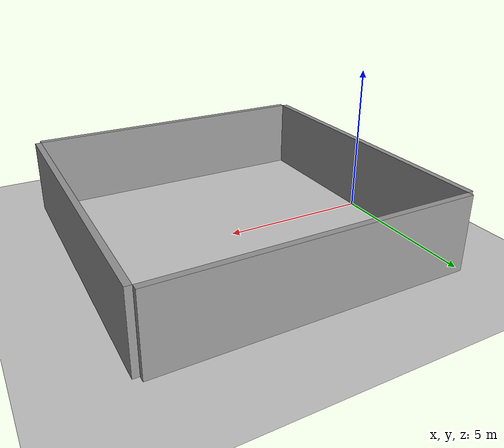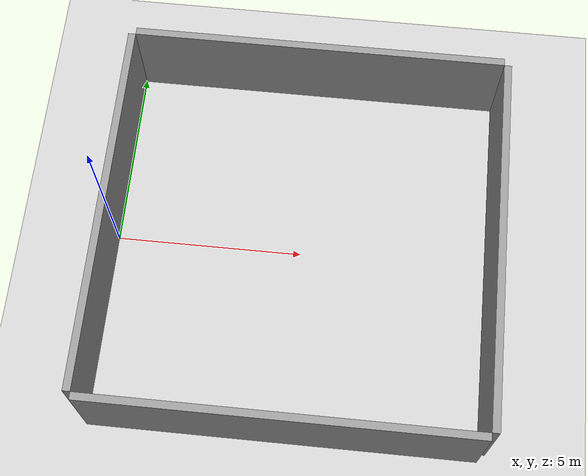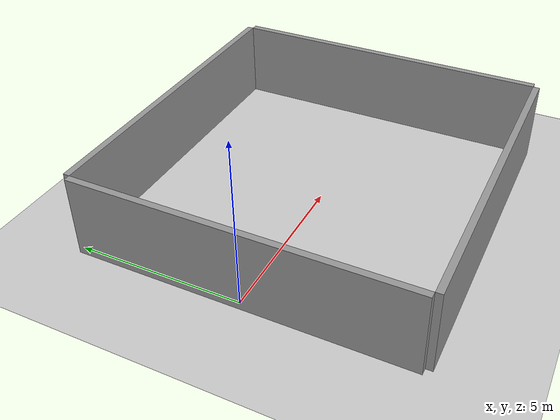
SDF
<?xml version="1.0" ?>
<sdf version="1.9">
  <world name="simple_room">

    <plugin filename="libgz-sim-physics-system.so" name="gz::sim::systems::Physics"/>
    <plugin filename="libgz-sim-user-commands-system.so" name="gz::sim::systems::UserCommands"/>
    <plugin filename="libgz-sim-scene-broadcaster-system.so" name="gz::sim::systems::SceneBroadcaster"/>
    <plugin filename="libgz-sim-sensors-system.so" name="gz::sim::systems::Sensors"/>

    <scene>
      <ambient>0.4 0.4 0.4 1.0</ambient>
      <background>0.7 0.7 0.7 1.0</background>
    </scene>

    <model name="ground_plane">
      <static>true</static>
      <link name="link">
        <collision name="collision">
          <geometry>
            <plane>
              <normal>0 0 1</normal>
              <size>100 100</size>
            </plane>
          </geometry>
        </collision>
        <visual name="visual">
          <geometry>
            <plane>
              <normal>0 0 1</normal>
              <size>100 100</size>
            </plane>
          </geometry>
          <material>
            <ambient>0.8 0.8 0.8 1</ambient>
            <diffuse>0.8 0.8 0.8 1</diffuse>
          </material>
        </visual>
      </link>
    </model>

    <light name="sun" type="directional">
      <cast_shadows>true</cast_shadows>
      <pose>0 0 10 0 0 0</pose>
      <diffuse>0.9 0.9 0.9 1</diffuse>
      <specular>0.2 0.2 0.2 1</specular>
      <direction>-0.5 0.1 -0.9</direction>
    </light>

    <model name="wall_north">
      <static>true</static>
      <link name="link">
        <collision name="collision">
          <geometry>
            <box><size>10 0.2 2.5</size></box>
          </geometry>
        </collision>
        <visual name="visual">
          <geometry>
            <box><size>10 0.2 2.5</size></box>
          </geometry>
          <material>
            <ambient>0.6 0.6 0.6 1</ambient>
            <diffuse>0.6 0.6 0.6 1</diffuse>
          </material>
        </visual>
      </link>
      <pose>5 5.1 1.25 0 0 0</pose>
    </model>

    <model name="wall_south">
      <static>true</static>
      <link name="link">
        <collision name="collision">
          <geometry>
            <box><size>10 0.2 2.5</size></box>
          </geometry>
        </collision>
        <visual name="visual">
          <geometry>
            <box><size>10 0.2 2.5</size></box>
          </geometry>
          <material>
            <ambient>0.6 0.6 0.6 1</ambient>
            <diffuse>0.6 0.6 0.6 1</diffuse>
          </material>
        </visual>
      </link>
      <pose>5 -5.1 1.25 0 0 0</pose>
    </model>

    <model name="wall_east">
      <static>true</static>
      <link name="link">
        <collision name="collision">
          <geometry>
            <box><size>0.2 10 2.5</size></box>
          </geometry>
        </collision>
        <visual name="visual">
          <geometry>
            <box><size>0.2 10 2.5</size></box>
          </geometry>
          <material>
            <ambient>0.6 0.6 0.6 1</ambient>
            <diffuse>0.6 0.6 0.6 1</diffuse>
          </material>
        </visual>
      </link>
      <pose>10.1 0 1.25 0 0 0</pose>
    </model>

    <model name="wall_west">
      <static>true</static>
      <link name="link">
        <collision name="collision">
          <geometry>
            <box><size>0.2 10 2.5</size></box>
          </geometry>
        </collision>
        <visual name="visual">
          <geometry>
            <box><size>0.2 10 2.5</size></box>
          </geometry>
          <material>
            <ambient>0.6 0.6 0.6 1</ambient>
            <diffuse>0.6 0.6 0.6 1</diffuse>
          </material>
        </visual>
      </link>
      <pose>-0.1 0 1.25 0 0 0</pose>
    </model>

  </world>
</sdf>
